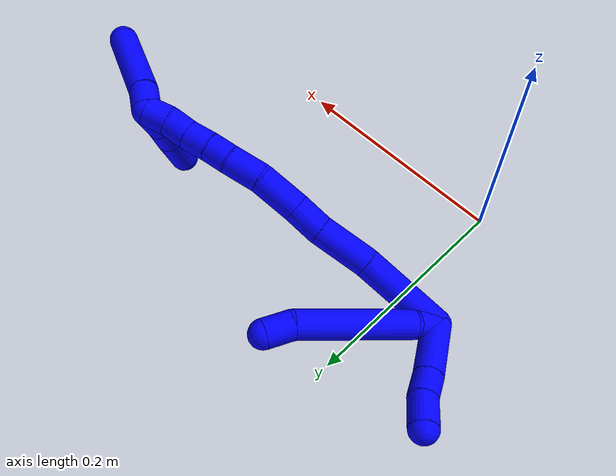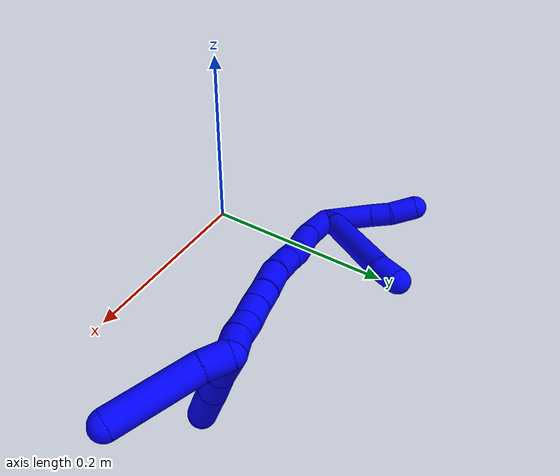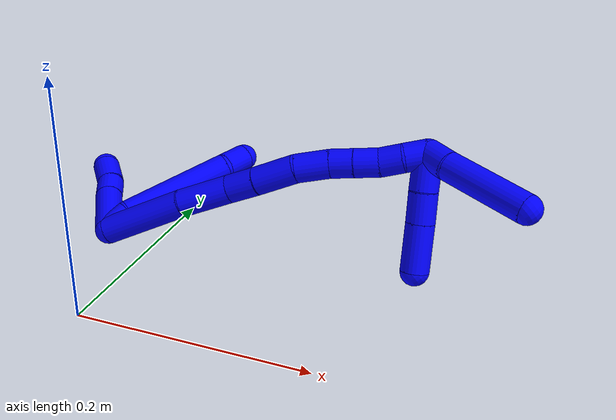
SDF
<sdf version="1.7">
 <world name="default">
  <model name="bin">
   <static>1</static>
   <link name="bottom">
    <collision name="collision-bottom">
     <pose>0 0 -0.01 0 -0 0</pose>
     <geometry><box><size>0.8 0.6 0.02</size></box></geometry>
     <surface>
      <friction><ode><mu>100</mu><mu2>100</mu2></ode></friction>
      <contact><collide_bitmask>65535</collide_bitmask></contact>
     </surface>
    </collision>
   </link>
   <link name="west_wall">
    <collision name="collision-west_wall">
     <pose>-0.41 0 0.1 0 -0 0</pose>
     <geometry><box><size>0.02 0.6 0.2</size></box></geometry>
     <surface>
      <friction><ode><mu>100</mu><mu2>100</mu2></ode></friction>
      <contact><collide_bitmask>65535</collide_bitmask></contact>
     </surface>
    </collision>
   </link>
   <link name="east_wall">
    <collision name="collision-east_wall">
     <pose>0.41 0 0.1 0 -0 0</pose>
     <geometry><box><size>0.02 0.6 0.2</size></box></geometry>
     <surface>
      <friction><ode><mu>100</mu><mu2>100</mu2></ode></friction>
      <contact><collide_bitmask>65535</collide_bitmask></contact>
     </surface>
    </collision>
   </link>
   <link name="south_wall">
    <collision name="collision-south_wall">
     <pose>0 -0.31 0.1 0 -0 0</pose>
     <geometry><box><size>0.8 0.02 0.2</size></box></geometry>
     <surface>
      <friction><ode><mu>100</mu><mu2>100</mu2></ode></friction>
      <contact><collide_bitmask>65535</collide_bitmask></contact>
     </surface>
    </collision>
   </link>
   <link name="north_wall">
    <collision name="collision-north_wall">
     <pose>0 0.31 0.1 0 -0 0</pose>
     <geometry><box><size>0.8 0.02 0.2</size></box></geometry>
     <surface>
      <friction><ode><mu>100</mu><mu2>100</mu2></ode></friction>
      <contact><collide_bitmask>65535</collide_bitmask></contact>
     </surface>
    </collision>
   </link>
  </model>
  <model name="1">
   <static>0</static>
   <link name="1">
    <collision name="collision-cylinder-e_1_2_8">
     <pose>-0.002616 0.00253 0.010844 -0.229179 -0.230747 0.026674</pose>
     <geometry><cylinder><radius>0.0125</radius><length>0.022877</length></cylinder></geometry>
     <surface>
      <friction><ode><mu>1.16</mu><mu2>1.16</mu2><slip1>0</slip1><slip2>0</slip2></ode></friction>
      <contact><ode><kp>1e+06</kp><kd>1</kd><max_vel>0</max_vel><min_depth>0.001</min_depth></ode></contact>
     </surface>
    </collision>
    <visual name="visual-cylinder-e_1_2_8">
     <pose>-0.002616 0.00253 0.010844 -0.229179 -0.230747 0.026674</pose>
     <geometry><cylinder><radius>0.0125</radius><length>0.022877</length></cylinder></geometry>
     <material><ambient>0 0 1 1</ambient></material>
    </visual>
    <collision name="collision-cylinder-e_2_8_9">
     <pose>-0.008558 0.025469 0.068619 -0.410225 -0.064892 0.013505</pose>
     <geometry><cylinder><radius>0.0125</radius><length>0.102569</length></cylinder></geometry>
     <surface>
      <friction><ode><mu>1.16</mu><mu2>1.16</mu2><slip1>0</slip1><slip2>0</slip2></ode></friction>
      <contact><ode><kp>1e+06</kp><kd>1</kd><max_vel>0</max_vel><min_depth>0.001</min_depth></ode></contact>
     </surface>
    </collision>
    <visual name="visual-cylinder-e_2_8_9">
     <pose>-0.008558 0.025469 0.068619 -0.410225 -0.064892 0.013505</pose>
     <geometry><cylinder><radius>0.0125</radius><length>0.102569</length></cylinder></geometry>
     <material><ambient>0 0 1 1</ambient></material>
    </visual>
    <collision name="collision-cylinder-e_3_9_6">
     <pose>-0.015114 0.052819 0.125147 -0.626029 -0.266292 0.086645</pose>
     <geometry><cylinder><radius>0.0125</radius><length>0.024554</length></cylinder></geometry>
     <surface>
      <friction><ode><mu>1.16</mu><mu2>1.16</mu2><slip1>0</slip1><slip2>0</slip2></ode></friction>
      <contact><ode><kp>1e+06</kp><kd>1</kd><max_vel>0</max_vel><min_depth>0.001</min_depth></ode></contact>
     </surface>
    </collision>
    <visual name="visual-cylinder-e_3_9_6">
     <pose>-0.015114 0.052819 0.125147 -0.626029 -0.266292 0.086645</pose>
     <geometry><cylinder><radius>0.0125</radius><length>0.024554</length></cylinder></geometry>
     <material><ambient>0 0 1 1</ambient></material>
    </visual>
    <collision name="collision-cylinder-e_1_2_10">
     <pose>-0.023883 0.006995 0.006105 -0.85325 -1.20003 0.602997</pose>
     <geometry><cylinder><radius>0.0125</radius><length>0.051249</length></cylinder></geometry>
     <surface>
      <friction><ode><mu>1.16</mu><mu2>1.16</mu2><slip1>0</slip1><slip2>0</slip2></ode></friction>
      <contact><ode><kp>1e+06</kp><kd>1</kd><max_vel>0</max_vel><min_depth>0.001</min_depth></ode></contact>
     </surface>
    </collision>
    <visual name="visual-cylinder-e_1_2_10">
     <pose>-0.023883 0.006995 0.006105 -0.85325 -1.20003 0.602997</pose>
     <geometry><cylinder><radius>0.0125</radius><length>0.051249</length></cylinder></geometry>
     <material><ambient>0 0 1 1</ambient></material>
    </visual>
    <collision name="collision-cylinder-e_2_10_11">
     <pose>-0.057421 0.017062 0.015618 -0.733587 -1.12718 0.476354</pose>
     <geometry><cylinder><radius>0.0125</radius><length>0.021379</length></cylinder></geometry>
     <surface>
      <friction><ode><mu>1.16</mu><mu2>1.16</mu2><slip1>0</slip1><slip2>0</slip2></ode></friction>
      <contact><ode><kp>1e+06</kp><kd>1</kd><max_vel>0</max_vel><min_depth>0.001</min_depth></ode></contact>
     </surface>
    </collision>
    <visual name="visual-cylinder-e_2_10_11">
     <pose>-0.057421 0.017062 0.015618 -0.733587 -1.12718 0.476354</pose>
     <geometry><cylinder><radius>0.0125</radius><length>0.021379</length></cylinder></geometry>
     <material><ambient>0 0 1 1</ambient></material>
    </visual>
    <collision name="collision-cylinder-e_3_11_5">
     <pose>-0.080452 0.022167 0.021093 -0.777122 -1.35732 0.637742</pose>
     <geometry><cylinder><radius>0.0125</radius><length>0.027372</length></cylinder></geometry>
     <surface>
      <friction><ode><mu>1.16</mu><mu2>1.16</mu2><slip1>0</slip1><slip2>0</slip2></ode></friction>
      <contact><ode><kp>1e+06</kp><kd>1</kd><max_vel>0</max_vel><min_depth>0.001</min_depth></ode></contact>
     </surface>
    </collision>
    <visual name="visual-cylinder-e_3_11_5">
     <pose>-0.080452 0.022167 0.021093 -0.777122 -1.35732 0.637742</pose>
     <geometry><cylinder><radius>0.0125</radius><length>0.027372</length></cylinder></geometry>
     <material><ambient>0 0 1 1</ambient></material>
    </visual>
    <collision name="collision-cylinder-e_1_2_12">
     <pose>0.017679 -0.001946 0.034822 0.055823 0.469166 0.013344</pose>
     <geometry><cylinder><radius>0.0125</radius><length>0.078203</length></cylinder></geometry>
     <surface>
      <friction><ode><mu>1.16</mu><mu2>1.16</mu2><slip1>0</slip1><slip2>0</slip2></ode></friction>
      <contact><ode><kp>1e+06</kp><kd>1</kd><max_vel>0</max_vel><min_depth>0.001</min_depth></ode></contact>
     </surface>
    </collision>
    <visual name="visual-cylinder-e_1_2_12">
     <pose>0.017679 -0.001946 0.034822 0.055823 0.469166 0.013344</pose>
     <geometry><cylinder><radius>0.0125</radius><length>0.078203</length></cylinder></geometry>
     <material><ambient>0 0 1 1</ambient></material>
    </visual>
    <collision name="collision-cylinder-e_2_12_13">
     <pose>0.045502 -0.002468 0.090483 -0.068232 0.452071 -0.015697</pose>
     <geometry><cylinder><radius>0.0125</radius><length>0.046441</length></cylinder></geometry>
     <surface>
      <friction><ode><mu>1.16</mu><mu2>1.16</mu2><slip1>0</slip1><slip2>0</slip2></ode></friction>
      <contact><ode><kp>1e+06</kp><kd>1</kd><max_vel>0</max_vel><min_depth>0.001</min_depth></ode></contact>
     </surface>
    </collision>
    <visual name="visual-cylinder-e_2_12_13">
     <pose>0.045502 -0.002468 0.090483 -0.068232 0.452071 -0.015697</pose>
     <geometry><cylinder><radius>0.0125</radius><length>0.046441</length></cylinder></geometry>
     <material><ambient>0 0 1 1</ambient></material>
    </visual>
    <collision name="collision-cylinder-e_3_13_14">
     <pose>0.062421 -0.001557 0.122607 0.045458 0.540268 0.012589</pose>
     <geometry><cylinder><radius>0.0125</radius><length>0.026345</length></cylinder></geometry>
     <surface>
      <friction><ode><mu>1.16</mu><mu2>1.16</mu2><slip1>0</slip1><slip2>0</slip2></ode></friction>
      <contact><ode><kp>1e+06</kp><kd>1</kd><max_vel>0</max_vel><min_depth>0.001</min_depth></ode></contact>
     </surface>
    </collision>
    <visual name="visual-cylinder-e_3_13_14">
     <pose>0.062421 -0.001557 0.122607 0.045458 0.540268 0.012589</pose>
     <geometry><cylinder><radius>0.0125</radius><length>0.026345</length></cylinder></geometry>
     <material><ambient>0 0 1 1</ambient></material>
    </visual>
    <collision name="collision-cylinder-e_4_14_15">
     <pose>0.077891 -0.002298 0.150288 0.013897 0.487504 0.003456</pose>
     <geometry><cylinder><radius>0.0125</radius><length>0.037121</length></cylinder></geometry>
     <surface>
      <friction><ode><mu>1.16</mu><mu2>1.16</mu2><slip1>0</slip1><slip2>0</slip2></ode></friction>
      <contact><ode><kp>1e+06</kp><kd>1</kd><max_vel>0</max_vel><min_depth>0.001</min_depth></ode></contact>
     </surface>
    </collision>
    <visual name="visual-cylinder-e_4_14_15">
     <pose>0.077891 -0.002298 0.150288 0.013897 0.487504 0.003456</pose>
     <geometry><cylinder><radius>0.0125</radius><length>0.037121</length></cylinder></geometry>
     <material><ambient>0 0 1 1</ambient></material>
    </visual>
    <collision name="collision-cylinder-e_5_15_16">
     <pose>0.094089 0.00034 0.179168 -0.225711 0.529997 -0.061496</pose>
     <geometry><cylinder><radius>0.0125</radius><length>0.029687</length></cylinder></geometry>
     <surface>
      <friction><ode><mu>1.16</mu><mu2>1.16</mu2><slip1>0</slip1><slip2>0</slip2></ode></friction>
      <contact><ode><kp>1e+06</kp><kd>1</kd><max_vel>0</max_vel><min_depth>0.001</min_depth></ode></contact>
     </surface>
    </collision>
    <visual name="visual-cylinder-e_5_15_16">
     <pose>0.094089 0.00034 0.179168 -0.225711 0.529997 -0.061496</pose>
     <geometry><cylinder><radius>0.0125</radius><length>0.029687</length></cylinder></geometry>
     <material><ambient>0 0 1 1</ambient></material>
    </visual>
    <collision name="collision-cylinder-e_6_16_17">
     <pose>0.107632 0.005416 0.199364 -0.278916 0.645246 -0.093783</pose>
     <geometry><cylinder><radius>0.0125</radius><length>0.020086</length></cylinder></geometry>
     <surface>
      <friction><ode><mu>1.16</mu><mu2>1.16</mu2><slip1>0</slip1><slip2>0</slip2></ode></friction>
      <contact><ode><kp>1e+06</kp><kd>1</kd><max_vel>0</max_vel><min_depth>0.001</min_depth></ode></contact>
     </surface>
    </collision>
    <visual name="visual-cylinder-e_6_16_17">
     <pose>0.107632 0.005416 0.199364 -0.278916 0.645246 -0.093783</pose>
     <geometry><cylinder><radius>0.0125</radius><length>0.020086</length></cylinder></geometry>
     <material><ambient>0 0 1 1</ambient></material>
    </visual>
    <collision name="collision-cylinder-e_7_17_18">
     <pose>0.1198 0.010506 0.215469 -0.33074 0.604412 -0.103966</pose>
     <geometry><cylinder><radius>0.0125</radius><length>0.021566</length></cylinder></geometry>
     <surface>
      <friction><ode><mu>1.16</mu><mu2>1.16</mu2><slip1>0</slip1><slip2>0</slip2></ode></friction>
      <contact><ode><kp>1e+06</kp><kd>1</kd><max_vel>0</max_vel><min_depth>0.001</min_depth></ode></contact>
     </surface>
    </collision>
    <visual name="visual-cylinder-e_7_17_18">
     <pose>0.1198 0.010506 0.215469 -0.33074 0.604412 -0.103966</pose>
     <geometry><cylinder><radius>0.0125</radius><length>0.021566</length></cylinder></geometry>
     <material><ambient>0 0 1 1</ambient></material>
    </visual>
    <collision name="collision-cylinder-e_8_18_19">
     <pose>0.131211 0.014397 0.23244 -0.117124 0.548873 -0.03301</pose>
     <geometry><cylinder><radius>0.0125</radius><length>0.020252</length></cylinder></geometry>
     <surface>
      <friction><ode><mu>1.16</mu><mu2>1.16</mu2><slip1>0</slip1><slip2>0</slip2></ode></friction>
      <contact><ode><kp>1e+06</kp><kd>1</kd><max_vel>0</max_vel><min_depth>0.001</min_depth></ode></contact>
     </surface>
    </collision>
    <visual name="visual-cylinder-e_8_18_19">
     <pose>0.131211 0.014397 0.23244 -0.117124 0.548873 -0.03301</pose>
     <geometry><cylinder><radius>0.0125</radius><length>0.020252</length></cylinder></geometry>
     <material><ambient>0 0 1 1</ambient></material>
    </visual>
    <collision name="collision-cylinder-e_9_19_1">
     <pose>0.140683 0.018088 0.249867 -0.294275 0.425493 -0.064009</pose>
     <geometry><cylinder><radius>0.0125</radius><length>0.020299</length></cylinder></geometry>
     <surface>
      <friction><ode><mu>1.16</mu><mu2>1.16</mu2><slip1>0</slip1><slip2>0</slip2></ode></friction>
      <contact><ode><kp>1e+06</kp><kd>1</kd><max_vel>0</max_vel><min_depth>0.001</min_depth></ode></contact>
     </surface>
    </collision>
    <visual name="visual-cylinder-e_9_19_1">
     <pose>0.140683 0.018088 0.249867 -0.294275 0.425493 -0.064009</pose>
     <geometry><cylinder><radius>0.0125</radius><length>0.020299</length></cylinder></geometry>
     <material><ambient>0 0 1 1</ambient></material>
    </visual>
    <collision name="collision-cylinder-e_1_1_20">
     <pose>0.152284 0.028909 0.247542 -2.51195 0.492152 -1.31395</pose>
     <geometry><cylinder><radius>0.0125</radius><length>0.031368</length></cylinder></geometry>
     <surface>
      <friction><ode><mu>1.16</mu><mu2>1.16</mu2><slip1>0</slip1><slip2>0</slip2></ode></friction>
      <contact><ode><kp>1e+06</kp><kd>1</kd><max_vel>0</max_vel><min_depth>0.001</min_depth></ode></contact>
     </surface>
    </collision>
    <visual name="visual-cylinder-e_1_1_20">
     <pose>0.152284 0.028909 0.247542 -2.51195 0.492152 -1.31395</pose>
     <geometry><cylinder><radius>0.0125</radius><length>0.031368</length></cylinder></geometry>
     <material><ambient>0 0 1 1</ambient></material>
    </visual>
    <collision name="collision-cylinder-e_2_20_21">
     <pose>0.165665 0.044832 0.227298 -2.43243 0.463182 -1.13432</pose>
     <geometry><cylinder><radius>0.0125</radius><length>0.026722</length></cylinder></geometry>
     <surface>
      <friction><ode><mu>1.16</mu><mu2>1.16</mu2><slip1>0</slip1><slip2>0</slip2></ode></friction>
      <contact><ode><kp>1e+06</kp><kd>1</kd><max_vel>0</max_vel><min_depth>0.001</min_depth></ode></contact>
     </surface>
    </collision>
    <visual name="visual-cylinder-e_2_20_21">
     <pose>0.165665 0.044832 0.227298 -2.43243 0.463182 -1.13432</pose>
     <geometry><cylinder><radius>0.0125</radius><length>0.026722</length></cylinder></geometry>
     <material><ambient>0 0 1 1</ambient></material>
    </visual>
    <collision name="collision-cylinder-e_3_21_4">
     <pose>0.181065 0.06431 0.203618 -2.4666 0.466805 -1.19087</pose>
     <geometry><cylinder><radius>0.0125</radius><length>0.041909</length></cylinder></geometry>
     <surface>
      <friction><ode><mu>1.16</mu><mu2>1.16</mu2><slip1>0</slip1><slip2>0</slip2></ode></friction>
      <contact><ode><kp>1e+06</kp><kd>1</kd><max_vel>0</max_vel><min_depth>0.001</min_depth></ode></contact>
     </surface>
    </collision>
    <visual name="visual-cylinder-e_3_21_4">
     <pose>0.181065 0.06431 0.203618 -2.4666 0.466805 -1.19087</pose>
     <geometry><cylinder><radius>0.0125</radius><length>0.041909</length></cylinder></geometry>
     <material><ambient>0 0 1 1</ambient></material>
    </visual>
    <collision name="collision-cylinder-e_1_1_22">
     <pose>0.156651 0.01974 0.260729 0.472107 1.38104 0.392357</pose>
     <geometry><cylinder><radius>0.0125</radius><length>0.023988</length></cylinder></geometry>
     <surface>
      <friction><ode><mu>1.16</mu><mu2>1.16</mu2><slip1>0</slip1><slip2>0</slip2></ode></friction>
      <contact><ode><kp>1e+06</kp><kd>1</kd><max_vel>0</max_vel><min_depth>0.001</min_depth></ode></contact>
     </surface>
    </collision>
    <visual name="visual-cylinder-e_1_1_22">
     <pose>0.156651 0.01974 0.260729 0.472107 1.38104 0.392357</pose>
     <geometry><cylinder><radius>0.0125</radius><length>0.023988</length></cylinder></geometry>
     <material><ambient>0 0 1 1</ambient></material>
    </visual>
    <collision name="collision-cylinder-e_2_22_3">
     <pose>0.205151 0.020291 0.272415 -0.161855 1.31002 -0.124438</pose>
     <geometry><cylinder><radius>0.0125</radius><length>0.076012</length></cylinder></geometry>
     <surface>
      <friction><ode><mu>1.16</mu><mu2>1.16</mu2><slip1>0</slip1><slip2>0</slip2></ode></friction>
      <contact><ode><kp>1e+06</kp><kd>1</kd><max_vel>0</max_vel><min_depth>0.001</min_depth></ode></contact>
     </surface>
    </collision>
    <visual name="visual-cylinder-e_2_22_3">
     <pose>0.205151 0.020291 0.272415 -0.161855 1.31002 -0.124438</pose>
     <geometry><cylinder><radius>0.0125</radius><length>0.076012</length></cylinder></geometry>
     <material><ambient>0 0 1 1</ambient></material>
    </visual>
    <collision name="collision-sphere-3">
     <pose>0.241872 0.02187 0.282086 0 -0 0</pose>
     <geometry><sphere><radius>0.0125</radius></sphere></geometry>
     <surface>
      <friction><ode><mu>1.16</mu><mu2>1.16</mu2><slip1>0</slip1><slip2>0</slip2></ode></friction>
      <contact><ode><kp>1e+06</kp><kd>1</kd><max_vel>0</max_vel><min_depth>0.001</min_depth></ode></contact>
     </surface>
    </collision>
    <visual name="visual-sphere-3">
     <pose>0.241872 0.02187 0.282086 0 -0 0</pose>
     <geometry><sphere><radius>0.0125</radius></sphere></geometry>
     <material><ambient>0 0 1 1</ambient></material>
    </visual>
    <collision name="collision-sphere-22">
     <pose>0.16843 0.018711 0.262744 0 -0 0</pose>
     <geometry><sphere><radius>0.0125</radius></sphere></geometry>
     <surface>
      <friction><ode><mu>1.16</mu><mu2>1.16</mu2><slip1>0</slip1><slip2>0</slip2></ode></friction>
      <contact><ode><kp>1e+06</kp><kd>1</kd><max_vel>0</max_vel><min_depth>0.001</min_depth></ode></contact>
     </surface>
    </collision>
    <visual name="visual-sphere-22">
     <pose>0.16843 0.018711 0.262744 0 -0 0</pose>
     <geometry><sphere><radius>0.0125</radius></sphere></geometry>
     <material><ambient>0 0 1 1</ambient></material>
    </visual>
    <collision name="collision-sphere-4">
     <pose>0.190495 0.076003 0.189009 0 -0 0</pose>
     <geometry><sphere><radius>0.0125</radius></sphere></geometry>
     <surface>
      <friction><ode><mu>1.16</mu><mu2>1.16</mu2><slip1>0</slip1><slip2>0</slip2></ode></friction>
      <contact><ode><kp>1e+06</kp><kd>1</kd><max_vel>0</max_vel><min_depth>0.001</min_depth></ode></contact>
     </surface>
    </collision>
    <visual name="visual-sphere-4">
     <pose>0.190495 0.076003 0.189009 0 -0 0</pose>
     <geometry><sphere><radius>0.0125</radius></sphere></geometry>
     <material><ambient>0 0 1 1</ambient></material>
    </visual>
    <collision name="collision-sphere-21">
     <pose>0.171634 0.052616 0.218227 0 -0 0</pose>
     <geometry><sphere><radius>0.0125</radius></sphere></geometry>
     <surface>
      <friction><ode><mu>1.16</mu><mu2>1.16</mu2><slip1>0</slip1><slip2>0</slip2></ode></friction>
      <contact><ode><kp>1e+06</kp><kd>1</kd><max_vel>0</max_vel><min_depth>0.001</min_depth></ode></contact>
     </surface>
    </collision>
    <visual name="visual-sphere-21">
     <pose>0.171634 0.052616 0.218227 0 -0 0</pose>
     <geometry><sphere><radius>0.0125</radius></sphere></geometry>
     <material><ambient>0 0 1 1</ambient></material>
    </visual>
    <collision name="collision-sphere-20">
     <pose>0.159695 0.037048 0.23637 0 -0 0</pose>
     <geometry><sphere><radius>0.0125</radius></sphere></geometry>
     <surface>
      <friction><ode><mu>1.16</mu><mu2>1.16</mu2><slip1>0</slip1><slip2>0</slip2></ode></friction>
      <contact><ode><kp>1e+06</kp><kd>1</kd><max_vel>0</max_vel><min_depth>0.001</min_depth></ode></contact>
     </surface>
    </collision>
    <visual name="visual-sphere-20">
     <pose>0.159695 0.037048 0.23637 0 -0 0</pose>
     <geometry><sphere><radius>0.0125</radius></sphere></geometry>
     <material><ambient>0 0 1 1</ambient></material>
    </visual>
    <collision name="collision-sphere-11">
     <pose>-0.067076 0.020134 0.019026 0 -0 0</pose>
     <geometry><sphere><radius>0.0125</radius></sphere></geometry>
     <surface>
      <friction><ode><mu>1.16</mu><mu2>1.16</mu2><slip1>0</slip1><slip2>0</slip2></ode></friction>
      <contact><ode><kp>1e+06</kp><kd>1</kd><max_vel>0</max_vel><min_depth>0.001</min_depth></ode></contact>
     </surface>
    </collision>
    <visual name="visual-sphere-11">
     <pose>-0.067076 0.020134 0.019026 0 -0 0</pose>
     <geometry><sphere><radius>0.0125</radius></sphere></geometry>
     <material><ambient>0 0 1 1</ambient></material>
    </visual>
    <collision name="collision-sphere-10">
     <pose>-0.047766 0.01399 0.01221 0 -0 0</pose>
     <geometry><sphere><radius>0.0125</radius></sphere></geometry>
     <surface>
      <friction><ode><mu>1.16</mu><mu2>1.16</mu2><slip1>0</slip1><slip2>0</slip2></ode></friction>
      <contact><ode><kp>1e+06</kp><kd>1</kd><max_vel>0</max_vel><min_depth>0.001</min_depth></ode></contact>
     </surface>
    </collision>
    <visual name="visual-sphere-10">
     <pose>-0.047766 0.01399 0.01221 0 -0 0</pose>
     <geometry><sphere><radius>0.0125</radius></sphere></geometry>
     <material><ambient>0 0 1 1</ambient></material>
    </visual>
    <collision name="collision-sphere-6">
     <pose>-0.018345 0.059759 0.134746 0 -0 0</pose>
     <geometry><sphere><radius>0.0125</radius></sphere></geometry>
     <surface>
      <friction><ode><mu>1.16</mu><mu2>1.16</mu2><slip1>0</slip1><slip2>0</slip2></ode></friction>
      <contact><ode><kp>1e+06</kp><kd>1</kd><max_vel>0</max_vel><min_depth>0.001</min_depth></ode></contact>
     </surface>
    </collision>
    <visual name="visual-sphere-6">
     <pose>-0.018345 0.059759 0.134746 0 -0 0</pose>
     <geometry><sphere><radius>0.0125</radius></sphere></geometry>
     <material><ambient>0 0 1 1</ambient></material>
    </visual>
    <collision name="collision-sphere-9">
     <pose>-0.011883 0.045879 0.115549 0 -0 0</pose>
     <geometry><sphere><radius>0.0125</radius></sphere></geometry>
     <surface>
      <friction><ode><mu>1.16</mu><mu2>1.16</mu2><slip1>0</slip1><slip2>0</slip2></ode></friction>
      <contact><ode><kp>1e+06</kp><kd>1</kd><max_vel>0</max_vel><min_depth>0.001</min_depth></ode></contact>
     </surface>
    </collision>
    <visual name="visual-sphere-9">
     <pose>-0.011883 0.045879 0.115549 0 -0 0</pose>
     <geometry><sphere><radius>0.0125</radius></sphere></geometry>
     <material><ambient>0 0 1 1</ambient></material>
    </visual>
    <collision name="collision-sphere-2">
     <geometry><sphere><radius>0.0125</radius></sphere></geometry>
     <surface>
      <friction><ode><mu>1.16</mu><mu2>1.16</mu2><slip1>0</slip1><slip2>0</slip2></ode></friction>
      <contact><ode><kp>1e+06</kp><kd>1</kd><max_vel>0</max_vel><min_depth>0.001</min_depth></ode></contact>
     </surface>
    </collision>
    <visual name="visual-sphere-2">
     <geometry><sphere><radius>0.0125</radius></sphere></geometry>
     <material><ambient>0 0 1 1</ambient></material>
    </visual>
    <collision name="collision-sphere-19">
     <pose>0.136494 0.015406 0.24102 0 -0 0</pose>
     <geometry><sphere><radius>0.0125</radius></sphere></geometry>
     <surface>
      <friction><ode><mu>1.16</mu><mu2>1.16</mu2><slip1>0</slip1><slip2>0</slip2></ode></friction>
      <contact><ode><kp>1e+06</kp><kd>1</kd><max_vel>0</max_vel><min_depth>0.001</min_depth></ode></contact>
     </surface>
    </collision>
    <visual name="visual-sphere-19">
     <pose>0.136494 0.015406 0.24102 0 -0 0</pose>
     <geometry><sphere><radius>0.0125</radius></sphere></geometry>
     <material><ambient>0 0 1 1</ambient></material>
    </visual>
    <collision name="collision-sphere-8">
     <pose>-0.005232 0.005059 0.021688 0 -0 0</pose>
     <geometry><sphere><radius>0.0125</radius></sphere></geometry>
     <surface>
      <friction><ode><mu>1.16</mu><mu2>1.16</mu2><slip1>0</slip1><slip2>0</slip2></ode></friction>
      <contact><ode><kp>1e+06</kp><kd>1</kd><max_vel>0</max_vel><min_depth>0.001</min_depth></ode></contact>
     </surface>
    </collision>
    <visual name="visual-sphere-8">
     <pose>-0.005232 0.005059 0.021688 0 -0 0</pose>
     <geometry><sphere><radius>0.0125</radius></sphere></geometry>
     <material><ambient>0 0 1 1</ambient></material>
    </visual>
    <collision name="collision-sphere-5">
     <pose>-0.093827 0.024201 0.02316 0 -0 0</pose>
     <geometry><sphere><radius>0.0125</radius></sphere></geometry>
     <surface>
      <friction><ode><mu>1.16</mu><mu2>1.16</mu2><slip1>0</slip1><slip2>0</slip2></ode></friction>
      <contact><ode><kp>1e+06</kp><kd>1</kd><max_vel>0</max_vel><min_depth>0.001</min_depth></ode></contact>
     </surface>
    </collision>
    <visual name="visual-sphere-5">
     <pose>-0.093827 0.024201 0.02316 0 -0 0</pose>
     <geometry><sphere><radius>0.0125</radius></sphere></geometry>
     <material><ambient>0 0 1 1</ambient></material>
    </visual>
    <collision name="collision-sphere-12">
     <pose>0.035359 -0.003892 0.069644 0 -0 0</pose>
     <geometry><sphere><radius>0.0125</radius></sphere></geometry>
     <surface>
      <friction><ode><mu>1.16</mu><mu2>1.16</mu2><slip1>0</slip1><slip2>0</slip2></ode></friction>
      <contact><ode><kp>1e+06</kp><kd>1</kd><max_vel>0</max_vel><min_depth>0.001</min_depth></ode></contact>
     </surface>
    </collision>
    <visual name="visual-sphere-12">
     <pose>0.035359 -0.003892 0.069644 0 -0 0</pose>
     <geometry><sphere><radius>0.0125</radius></sphere></geometry>
     <material><ambient>0 0 1 1</ambient></material>
    </visual>
    <collision name="collision-sphere-13">
     <pose>0.055646 -0.001044 0.111322 0 -0 0</pose>
     <geometry><sphere><radius>0.0125</radius></sphere></geometry>
     <surface>
      <friction><ode><mu>1.16</mu><mu2>1.16</mu2><slip1>0</slip1><slip2>0</slip2></ode></friction>
      <contact><ode><kp>1e+06</kp><kd>1</kd><max_vel>0</max_vel><min_depth>0.001</min_depth></ode></contact>
     </surface>
    </collision>
    <visual name="visual-sphere-13">
     <pose>0.055646 -0.001044 0.111322 0 -0 0</pose>
     <geometry><sphere><radius>0.0125</radius></sphere></geometry>
     <material><ambient>0 0 1 1</ambient></material>
    </visual>
    <collision name="collision-sphere-14">
     <pose>0.069196 -0.00207 0.133892 0 -0 0</pose>
     <geometry><sphere><radius>0.0125</radius></sphere></geometry>
     <surface>
      <friction><ode><mu>1.16</mu><mu2>1.16</mu2><slip1>0</slip1><slip2>0</slip2></ode></friction>
      <contact><ode><kp>1e+06</kp><kd>1</kd><max_vel>0</max_vel><min_depth>0.001</min_depth></ode></contact>
     </surface>
    </collision>
    <visual name="visual-sphere-14">
     <pose>0.069196 -0.00207 0.133892 0 -0 0</pose>
     <geometry><sphere><radius>0.0125</radius></sphere></geometry>
     <material><ambient>0 0 1 1</ambient></material>
    </visual>
    <collision name="collision-sphere-15">
     <pose>0.086585 -0.002526 0.166685 0 -0 0</pose>
     <geometry><sphere><radius>0.0125</radius></sphere></geometry>
     <surface>
      <friction><ode><mu>1.16</mu><mu2>1.16</mu2><slip1>0</slip1><slip2>0</slip2></ode></friction>
      <contact><ode><kp>1e+06</kp><kd>1</kd><max_vel>0</max_vel><min_depth>0.001</min_depth></ode></contact>
     </surface>
    </collision>
    <visual name="visual-sphere-15">
     <pose>0.086585 -0.002526 0.166685 0 -0 0</pose>
     <geometry><sphere><radius>0.0125</radius></sphere></geometry>
     <material><ambient>0 0 1 1</ambient></material>
    </visual>
    <collision name="collision-sphere-16">
     <pose>0.101593 0.003207 0.19165 0 -0 0</pose>
     <geometry><sphere><radius>0.0125</radius></sphere></geometry>
     <surface>
      <friction><ode><mu>1.16</mu><mu2>1.16</mu2><slip1>0</slip1><slip2>0</slip2></ode></friction>
      <contact><ode><kp>1e+06</kp><kd>1</kd><max_vel>0</max_vel><min_depth>0.001</min_depth></ode></contact>
     </surface>
    </collision>
    <visual name="visual-sphere-16">
     <pose>0.101593 0.003207 0.19165 0 -0 0</pose>
     <geometry><sphere><radius>0.0125</radius></sphere></geometry>
     <material><ambient>0 0 1 1</ambient></material>
    </visual>
    <collision name="collision-sphere-17">
     <pose>0.113672 0.007625 0.207077 0 -0 0</pose>
     <geometry><sphere><radius>0.0125</radius></sphere></geometry>
     <surface>
      <friction><ode><mu>1.16</mu><mu2>1.16</mu2><slip1>0</slip1><slip2>0</slip2></ode></friction>
      <contact><ode><kp>1e+06</kp><kd>1</kd><max_vel>0</max_vel><min_depth>0.001</min_depth></ode></contact>
     </surface>
    </collision>
    <visual name="visual-sphere-17">
     <pose>0.113672 0.007625 0.207077 0 -0 0</pose>
     <geometry><sphere><radius>0.0125</radius></sphere></geometry>
     <material><ambient>0 0 1 1</ambient></material>
    </visual>
    <collision name="collision-sphere-18">
     <pose>0.125928 0.013387 0.223861 0 -0 0</pose>
     <geometry><sphere><radius>0.0125</radius></sphere></geometry>
     <surface>
      <friction><ode><mu>1.16</mu><mu2>1.16</mu2><slip1>0</slip1><slip2>0</slip2></ode></friction>
      <contact><ode><kp>1e+06</kp><kd>1</kd><max_vel>0</max_vel><min_depth>0.001</min_depth></ode></contact>
     </surface>
    </collision>
    <visual name="visual-sphere-18">
     <pose>0.125928 0.013387 0.223861 0 -0 0</pose>
     <geometry><sphere><radius>0.0125</radius></sphere></geometry>
     <material><ambient>0 0 1 1</ambient></material>
    </visual>
    <collision name="collision-sphere-1">
     <pose>0.144873 0.020769 0.258714 0 -0 0</pose>
     <geometry><sphere><radius>0.0125</radius></sphere></geometry>
     <surface>
      <friction><ode><mu>1.16</mu><mu2>1.16</mu2><slip1>0</slip1><slip2>0</slip2></ode></friction>
      <contact><ode><kp>1e+06</kp><kd>1</kd><max_vel>0</max_vel><min_depth>0.001</min_depth></ode></contact>
     </surface>
    </collision>
    <visual name="visual-sphere-1">
     <pose>0.144873 0.020769 0.258714 0 -0 0</pose>
     <geometry><sphere><radius>0.0125</radius></sphere></geometry>
     <material><ambient>0 0 1 1</ambient></material>
    </visual>
    <inertial>
     <pose>0.068353 0.016966 0.133868 0 -0 0</pose>
     <mass>0.75</mass>
     <inertia><ixx>0.000186</ixx><ixy>0</ixy><ixz>0</ixz><iyy>0.000223</iyy><iyz>0</iyz><izz>-8e-05</izz></inertia>
    </inertial>
   </link>
   <pose>-0.040563 0.113394 0.011805 -0.931277 0.267177 -0.660519</pose>
  </model>
 </world>
</sdf>
